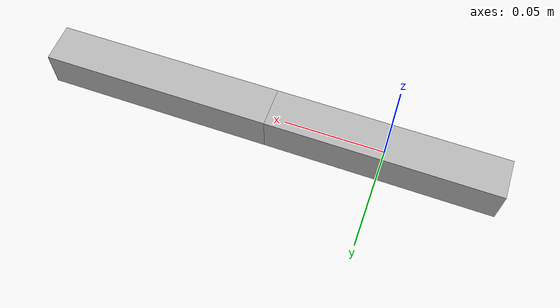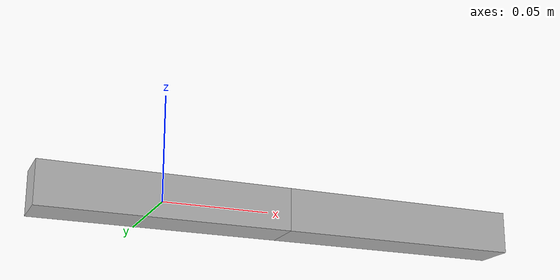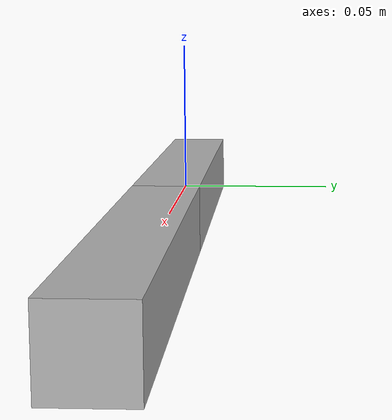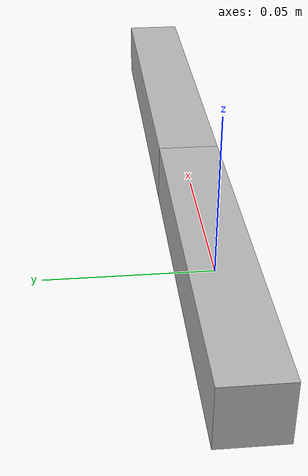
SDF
<?xml version="1.0" ?>
<sdf version="1.5">
  <model name="stiffness_test">
    <pose>0 0 0 0 0 0</pose>
    <self_collide>false</self_collide>

    <link name="link1">
      <pose>0 0 0 0 0 0 </pose>
      <inertial>
        <mass>0.575</mass>
        <inertia>
          <ixx>3.8333e-05</ixx>
          <iyy>6.5286e-04</iyy>
          <izz>6.5286e-04</izz>
          <ixy>0.0</ixy>
          <ixz>0.0</ixz>
          <iyz>0.0</iyz>
        </inertia>
      </inertial>
      <collision name="link1_collision">
        <geometry>
          <box>
            <size>0.115 0.02 0.02</size>
          </box>
        </geometry>
      </collision>
      <visual name="link1_visual">
        <geometry>
          <box>
            <size>0.115 0.02 0.02</size>
          </box>
        </geometry>
        <material>
          <color rgba="0.3 0.3 0.3 1.0"/>
        </material>
      </visual>
    </link>
    <link name="link2">
      <pose>0.115 0 0 0 0 0 </pose>
      <inertial>
        <mass>0.575</mass>
        <inertia>
          <ixx>3.8333e-05</ixx>
          <iyy>6.5286e-04</iyy>
          <izz>6.5286e-04</izz>
          <ixy>0.0</ixy>
          <ixz>0.0</ixz>
          <iyz>0.0</iyz>
        </inertia>
      </inertial>
      <collision name="link1_collision">
        <geometry>
          <box>
            <size>0.115 0.02 0.02</size>
          </box>
        </geometry>
      </collision>
      <visual name="link1_visual">
        <geometry>
          <box>
            <size>0.115 0.02 0.02</size>
          </box>
        </geometry>
        <material>
          <color rgba="0.3 0.3 0.3 1.0"/>
        </material>
      </visual>
    </link>

    <joint name="joint_base" type="fixed">
      <pose>0 0 0 0 0 0</pose>
      <parent>world</parent>
      <child>link1</child>
    </joint>
    <joint name="joint_12" type="revolute">
      <pose>-0.0575 0 0 0 0 0</pose>
      <parent>link1</parent>
      <child>link2</child>
      <axis>
        <xyz>0 1 0</xyz>
        <dynamics>
          <damping>0.05</damping>
          <friction>0</friction>
          <spring_reference>0</spring_reference>
          <spring_stiffness>10.0</spring_stiffness>
        </dynamics>
      </axis>
    </joint>

  </model>
</sdf>
